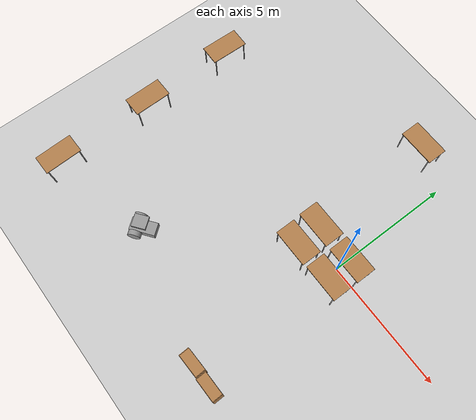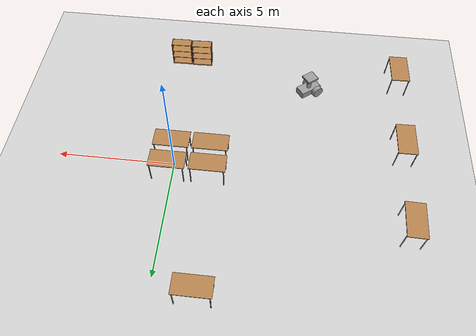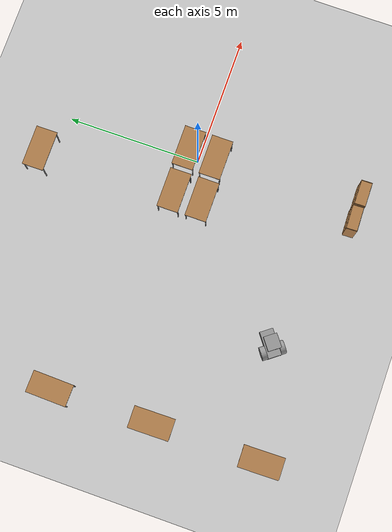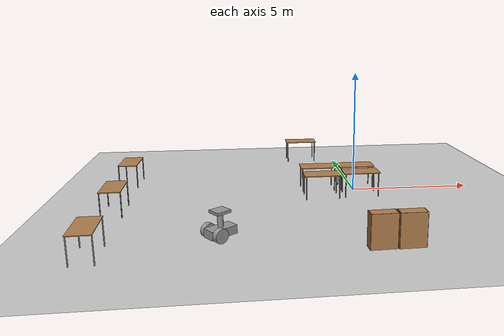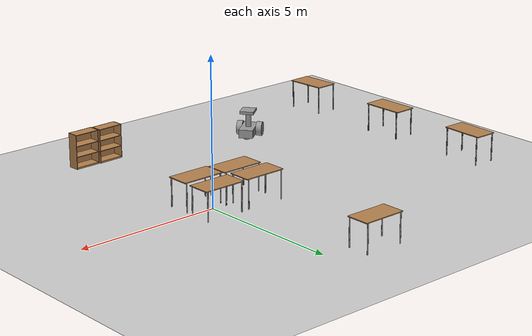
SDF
<sdf version="1.6">
 <world name="default">
  <model name="ground_plane">
   <static>1</static>
   <link name="link">
    <collision name="collision">
     <geometry><plane><normal>0 0 1</normal><size>100 100</size></plane></geometry>
     <surface><friction><ode><mu>100</mu><mu2>50</mu2></ode></friction></surface>
    </collision>
    <visual name="visual">
     <cast_shadows>0</cast_shadows>
     <geometry><plane><normal>0 0 1</normal><size>100 100</size></plane></geometry>
     <material>
      <script><uri>file://media/materials/scripts/gazebo.material</uri><name>Gazebo/Grey</name></script>
     </material>
    </visual>
   </link>
  </model>
  <model name="cody">
   <link name="link_0">
    <inertial>
     <mass>0.139888</mass>
     <inertia>
      <ixx>0.00424815</ixx>
      <ixy>0</ixy>
      <ixz>0</ixz>
      <iyy>0.01242</iyy>
      <iyz>0</iyz>
      <izz>0.0151428</izz>
     </inertia>
    </inertial>
    <pose>2.26803 -0.161715 0.175 0 -0 0</pose>
    <visual name="visual">
     <geometry><box><size>1 0.5 0.3</size></box></geometry>
     <material>
      <lighting>1</lighting>
      <script><uri>file://media/materials/scripts/gazebo.material</uri><name>Gazebo/Grey</name></script>
      <shader type="pixel"><normal_map>__default__</normal_map></shader>
      <ambient>0.3 0.3 0.3 1</ambient>
      <diffuse>0.7 0.7 0.7 1</diffuse>
      <specular>0.01 0.01 0.01 1</specular>
      <emissive>0 0 0 1</emissive>
     </material>
    </visual>
    <collision name="collision">
     <geometry><box><size>1 0.5 0.3</size></box></geometry>
     <surface>
      <friction>
       <ode><mu>1</mu><mu2>1</mu2><fdir1>0 0 0</fdir1><slip1>0</slip1><slip2>0</slip2></ode>
       <torsional>
        <coefficient>1</coefficient>
        <patch_radius>0</patch_radius>
        <surface_radius>0</surface_radius>
        <use_patch_radius>1</use_patch_radius>
        <ode><slip>0</slip></ode>
       </torsional>
      </friction>
      <bounce><restitution_coefficient>0</restitution_coefficient><threshold>1e+06</threshold></bounce>
      <contact>
       <collide_without_contact>0</collide_without_contact>
       <collide_without_contact_bitmask>1</collide_without_contact_bitmask>
       <collide_bitmask>1</collide_bitmask>
       <ode>
        <soft_cfm>0</soft_cfm>
        <soft_erp>0.2</soft_erp>
        <kp>1e+13</kp>
        <kd>1</kd>
        <max_vel>0.01</max_vel>
        <min_depth>0</min_depth>
       </ode>
       <bullet>
        <split_impulse>1</split_impulse>
        <split_impulse_penetration_threshold>-0.01</split_impulse_penetration_threshold>
        <soft_cfm>0</soft_cfm>
        <soft_erp>0.2</soft_erp>
        <kp>1e+13</kp>
        <kd>1</kd>
       </bullet>
      </contact>
     </surface>
    </collision>
   </link>
   <link name="link_1">
    <inertial>
     <mass>1</mass>
     <inertia><ixx>0.1</ixx><ixy>0</ixy><ixz>0</ixz><iyy>0.1</iyy><iyz>0</iyz><izz>0.1</izz></inertia>
    </inertial>
    <pose>1.96803 -0.161715 0.125 0 -0 0</pose>
    <visual name="visual">
     <geometry><sphere><radius>0.2</radius></sphere></geometry>
     <material>
      <lighting>1</lighting>
      <script><uri>file://media/materials/scripts/gazebo.material</uri><name>Gazebo/Grey</name></script>
      <shader type="pixel"><normal_map>__default__</normal_map></shader>
      <ambient>0.3 0.3 0.3 1</ambient>
      <diffuse>0.7 0.7 0.7 1</diffuse>
      <specular>0.01 0.01 0.01 1</specular>
      <emissive>0 0 0 1</emissive>
     </material>
    </visual>
    <collision name="collision">
     <geometry><sphere><radius>0.2</radius></sphere></geometry>
     <surface>
      <friction>
       <ode><mu>1</mu><mu2>1</mu2><fdir1>0 0 0</fdir1><slip1>0</slip1><slip2>0</slip2></ode>
       <torsional>
        <coefficient>1</coefficient>
        <patch_radius>0</patch_radius>
        <surface_radius>0</surface_radius>
        <use_patch_radius>1</use_patch_radius>
        <ode><slip>0</slip></ode>
       </torsional>
      </friction>
      <bounce><restitution_coefficient>0</restitution_coefficient><threshold>1e+06</threshold></bounce>
      <contact>
       <collide_without_contact>0</collide_without_contact>
       <collide_without_contact_bitmask>1</collide_without_contact_bitmask>
       <collide_bitmask>1</collide_bitmask>
       <ode>
        <soft_cfm>0</soft_cfm>
        <soft_erp>0.2</soft_erp>
        <kp>1e+13</kp>
        <kd>1</kd>
        <max_vel>0.01</max_vel>
        <min_depth>0</min_depth>
       </ode>
       <bullet>
        <split_impulse>1</split_impulse>
        <split_impulse_penetration_threshold>-0.01</split_impulse_penetration_threshold>
        <soft_cfm>0</soft_cfm>
        <soft_erp>0.2</soft_erp>
        <kp>1e+13</kp>
        <kd>1</kd>
       </bullet>
      </contact>
     </surface>
    </collision>
   </link>
   <link name="link_2_clone">
    <inertial>
     <mass>1</mass>
     <inertia><ixx>0.145833</ixx><ixy>0</ixy><ixz>0</ixz><iyy>0.145833</iyy><iyz>0</iyz><izz>0.125</izz></inertia>
    </inertial>
    <pose>2.51803 -0.511739 0.175 1.5707 -0 0</pose>
    <visual name="visual">
     <geometry><cylinder><radius>0.25</radius><length>0.2</length></cylinder></geometry>
     <material>
      <lighting>1</lighting>
      <script><uri>file://media/materials/scripts/gazebo.material</uri><name>Gazebo/Grey</name></script>
      <shader type="pixel"><normal_map>__default__</normal_map></shader>
      <ambient>0.3 0.3 0.3 1</ambient>
      <diffuse>0.7 0.7 0.7 1</diffuse>
      <specular>0.01 0.01 0.01 1</specular>
      <emissive>0 0 0 1</emissive>
     </material>
    </visual>
    <collision name="collision">
     <geometry><cylinder><radius>0.25</radius><length>0.2</length></cylinder></geometry>
     <surface>
      <friction>
       <ode><mu>1</mu><mu2>1</mu2><fdir1>0 0 0</fdir1><slip1>0</slip1><slip2>0</slip2></ode>
       <torsional>
        <coefficient>1</coefficient>
        <patch_radius>0</patch_radius>
        <surface_radius>0</surface_radius>
        <use_patch_radius>1</use_patch_radius>
        <ode><slip>0</slip></ode>
       </torsional>
      </friction>
      <bounce><restitution_coefficient>0</restitution_coefficient><threshold>1e+06</threshold></bounce>
      <contact>
       <collide_without_contact>0</collide_without_contact>
       <collide_without_contact_bitmask>1</collide_without_contact_bitmask>
       <collide_bitmask>1</collide_bitmask>
       <ode>
        <soft_cfm>0</soft_cfm>
        <soft_erp>0.2</soft_erp>
        <kp>1e+13</kp>
        <kd>1</kd>
        <max_vel>0.01</max_vel>
        <min_depth>0</min_depth>
       </ode>
       <bullet>
        <split_impulse>1</split_impulse>
        <split_impulse_penetration_threshold>-0.01</split_impulse_penetration_threshold>
        <soft_cfm>0</soft_cfm>
        <soft_erp>0.2</soft_erp>
        <kp>1e+13</kp>
        <kd>1</kd>
       </bullet>
      </contact>
     </surface>
    </collision>
   </link>
   <link name="link_3_clone">
    <inertial>
     <mass>1</mass>
     <inertia><ixx>0.145833</ixx><ixy>0</ixy><ixz>0</ixz><iyy>0.145833</iyy><iyz>0</iyz><izz>0.125</izz></inertia>
    </inertial>
    <pose>2.51803 0.188309 0.175 1.5707 -0 0</pose>
    <visual name="visual">
     <geometry><cylinder><radius>0.25</radius><length>0.2</length></cylinder></geometry>
     <material>
      <lighting>1</lighting>
      <script><uri>file://media/materials/scripts/gazebo.material</uri><name>Gazebo/Grey</name></script>
      <shader type="pixel"><normal_map>__default__</normal_map></shader>
      <ambient>0.3 0.3 0.3 1</ambient>
      <diffuse>0.7 0.7 0.7 1</diffuse>
      <specular>0.01 0.01 0.01 1</specular>
      <emissive>0 0 0 1</emissive>
     </material>
    </visual>
    <collision name="collision">
     <geometry><cylinder><radius>0.25</radius><length>0.2</length></cylinder></geometry>
     <surface>
      <friction>
       <ode><mu>1</mu><mu2>1</mu2><fdir1>0 0 0</fdir1><slip1>0</slip1><slip2>0</slip2></ode>
       <torsional>
        <coefficient>1</coefficient>
        <patch_radius>0</patch_radius>
        <surface_radius>0</surface_radius>
        <use_patch_radius>1</use_patch_radius>
        <ode><slip>0</slip></ode>
       </torsional>
      </friction>
      <bounce><restitution_coefficient>0</restitution_coefficient><threshold>1e+06</threshold></bounce>
      <contact>
       <collide_without_contact>0</collide_without_contact>
       <collide_without_contact_bitmask>1</collide_without_contact_bitmask>
       <collide_bitmask>1</collide_bitmask>
       <ode>
        <soft_cfm>0</soft_cfm>
        <soft_erp>0.2</soft_erp>
        <kp>1e+13</kp>
        <kd>1</kd>
        <max_vel>0.01</max_vel>
        <min_depth>0</min_depth>
       </ode>
       <bullet>
        <split_impulse>1</split_impulse>
        <split_impulse_penetration_threshold>-0.01</split_impulse_penetration_threshold>
        <soft_cfm>0</soft_cfm>
        <soft_erp>0.2</soft_erp>
        <kp>1e+13</kp>
        <kd>1</kd>
       </bullet>
      </contact>
     </surface>
    </collision>
   </link>
   <link name="link_4">
    <inertial>
     <mass>1</mass>
     <inertia><ixx>0.145833</ixx><ixy>0</ixy><ixz>0</ixz><iyy>0.145833</iyy><iyz>0</iyz><izz>0.125</izz></inertia>
    </inertial>
    <pose>2.26803 -0.161715 0.575 0 -0 0</pose>
    <visual name="visual">
     <geometry><cylinder><radius>0.1</radius><length>0.5</length></cylinder></geometry>
     <material>
      <lighting>1</lighting>
      <script><uri>file://media/materials/scripts/gazebo.material</uri><name>Gazebo/Grey</name></script>
      <shader type="pixel"><normal_map>__default__</normal_map></shader>
      <ambient>0.3 0.3 0.3 1</ambient>
      <diffuse>0.7 0.7 0.7 1</diffuse>
      <specular>0.01 0.01 0.01 1</specular>
      <emissive>0 0 0 1</emissive>
     </material>
    </visual>
    <collision name="collision">
     <geometry><cylinder><radius>0.1</radius><length>0.5</length></cylinder></geometry>
     <surface>
      <friction>
       <ode><mu>1</mu><mu2>1</mu2><fdir1>0 0 0</fdir1><slip1>0</slip1><slip2>0</slip2></ode>
       <torsional>
        <coefficient>1</coefficient>
        <patch_radius>0</patch_radius>
        <surface_radius>0</surface_radius>
        <use_patch_radius>1</use_patch_radius>
        <ode><slip>0</slip></ode>
       </torsional>
      </friction>
      <bounce><restitution_coefficient>0</restitution_coefficient><threshold>1e+06</threshold></bounce>
      <contact>
       <collide_without_contact>0</collide_without_contact>
       <collide_without_contact_bitmask>1</collide_without_contact_bitmask>
       <collide_bitmask>1</collide_bitmask>
       <ode>
        <soft_cfm>0</soft_cfm>
        <soft_erp>0.2</soft_erp>
        <kp>1e+13</kp>
        <kd>1</kd>
        <max_vel>0.01</max_vel>
        <min_depth>0</min_depth>
       </ode>
       <bullet>
        <split_impulse>1</split_impulse>
        <split_impulse_penetration_threshold>-0.01</split_impulse_penetration_threshold>
        <soft_cfm>0</soft_cfm>
        <soft_erp>0.2</soft_erp>
        <kp>1e+13</kp>
        <kd>1</kd>
       </bullet>
      </contact>
     </surface>
    </collision>
   </link>
   <link name="link_5_clone">
    <inertial>
     <mass>0.0226706</mass>
     <inertia>
      <ixx>0.00054023</ixx>
      <ixy>0</ixy>
      <ixz>0</ixz>
      <iyy>0.0004373</iyy>
      <iyz>0</iyz>
      <izz>0.00094619</izz>
     </inertia>
    </inertial>
    <pose>2.28803 -0.141715 0.875 0 -0 0</pose>
    <visual name="visual">
     <geometry><box><size>0.5414 0.5 0.1</size></box></geometry>
     <material>
      <lighting>1</lighting>
      <script><uri>file://media/materials/scripts/gazebo.material</uri><name>Gazebo/Grey</name></script>
      <shader type="pixel"><normal_map>__default__</normal_map></shader>
      <ambient>0.3 0.3 0.3 1</ambient>
      <diffuse>0.7 0.7 0.7 1</diffuse>
      <specular>0.01 0.01 0.01 1</specular>
      <emissive>0 0 0 1</emissive>
     </material>
    </visual>
    <collision name="collision">
     <geometry><box><size>0.472414 0.526936 0.091081</size></box></geometry>
     <surface>
      <friction>
       <ode><mu>1</mu><mu2>1</mu2><fdir1>0 0 0</fdir1><slip1>0</slip1><slip2>0</slip2></ode>
       <torsional>
        <coefficient>1</coefficient>
        <patch_radius>0</patch_radius>
        <surface_radius>0</surface_radius>
        <use_patch_radius>1</use_patch_radius>
        <ode><slip>0</slip></ode>
       </torsional>
      </friction>
      <bounce><restitution_coefficient>0</restitution_coefficient><threshold>1e+06</threshold></bounce>
      <contact>
       <collide_without_contact>0</collide_without_contact>
       <collide_without_contact_bitmask>1</collide_without_contact_bitmask>
       <collide_bitmask>1</collide_bitmask>
       <ode>
        <soft_cfm>0</soft_cfm>
        <soft_erp>0.2</soft_erp>
        <kp>1e+13</kp>
        <kd>1</kd>
        <max_vel>0.01</max_vel>
        <min_depth>0</min_depth>
       </ode>
       <bullet>
        <split_impulse>1</split_impulse>
        <split_impulse_penetration_threshold>-0.01</split_impulse_penetration_threshold>
        <soft_cfm>0</soft_cfm>
        <soft_erp>0.2</soft_erp>
        <kp>1e+13</kp>
        <kd>1</kd>
       </bullet>
      </contact>
     </surface>
    </collision>
   </link>
   <joint name="link_0_JOINT_0" type="ball">
    <parent>link_0</parent>
    <child>link_1</child>
    <physics>
     <ode><limit><cfm>0</cfm><erp>0.2</erp></limit><suspension><cfm>0</cfm><erp>0.2</erp></suspension></ode>
    </physics>
   </joint>
   <joint name="link_0_JOINT_2" type="revolute">
    <parent>link_0</parent>
    <child>link_2_clone</child>
    <axis>
     <xyz>0 0 1</xyz>
     <use_parent_model_frame>0</use_parent_model_frame>
     <limit>
      <lower>-1.79769e+308</lower>
      <upper>1.79769e+308</upper>
      <effort>-1</effort>
      <velocity>-1</velocity>
     </limit>
     <dynamics>
      <spring_reference>0</spring_reference>
      <spring_stiffness>0</spring_stiffness>
      <damping>0</damping>
     </dynamics>
    </axis>
    <physics>
     <ode><limit><cfm>0</cfm><erp>0.2</erp></limit><suspension><cfm>0</cfm><erp>0.2</erp></suspension></ode>
    </physics>
   </joint>
   <joint name="link_0_JOINT_4" type="revolute">
    <parent>link_0</parent>
    <child>link_3_clone</child>
    <axis>
     <xyz>0 0 1</xyz>
     <use_parent_model_frame>0</use_parent_model_frame>
     <limit>
      <lower>-1.79769e+308</lower>
      <upper>1.79769e+308</upper>
      <effort>-1</effort>
      <velocity>-1</velocity>
     </limit>
     <dynamics>
      <spring_reference>0</spring_reference>
      <spring_stiffness>0</spring_stiffness>
      <damping>0</damping>
     </dynamics>
    </axis>
    <physics>
     <ode><limit><cfm>0</cfm><erp>0.2</erp></limit><suspension><cfm>0</cfm><erp>0.2</erp></suspension></ode>
    </physics>
   </joint>
   <joint name="link_0_JOINT_5" type="revolute">
    <parent>link_0</parent>
    <child>link_4</child>
    <axis>
     <xyz>0 0 1</xyz>
     <use_parent_model_frame>0</use_parent_model_frame>
     <limit>
      <lower>-1.79769e+308</lower>
      <upper>1.79769e+308</upper>
      <effort>-1</effort>
      <velocity>-1</velocity>
     </limit>
     <dynamics>
      <spring_reference>0</spring_reference>
      <spring_stiffness>0</spring_stiffness>
      <damping>0</damping>
     </dynamics>
    </axis>
    <physics>
     <ode><limit><cfm>0</cfm><erp>0.2</erp></limit><suspension><cfm>0</cfm><erp>0.2</erp></suspension></ode>
    </physics>
   </joint>
   <joint name="link_4_JOINT_6" type="fixed">
    <parent>link_4</parent>
    <child>link_5_clone</child>
    <physics>
     <ode><limit><cfm>0</cfm><erp>0.2</erp></limit><suspension><cfm>0</cfm><erp>0.2</erp></suspension></ode>
    </physics>
   </joint>
   <static>0</static>
   <pose>-3.60387 -3.44077 0.075 2.4e-05 -2e-06 -2.49187</pose>
  </model>
  <model name="table">
   <static>1</static>
   <link name="link">
    <collision name="surface">
     <pose>0 0 1 0 -0 0</pose>
     <geometry><box><size>1.5 0.8 0.03</size></box></geometry>
     <surface><friction><ode><mu>0.6</mu><mu2>0.6</mu2></ode></friction></surface>
    </collision>
    <visual name="visual1">
     <pose>0 0 1 0 -0 0</pose>
     <geometry><box><size>1.5 0.8 0.03</size></box></geometry>
     <material>
      <script><uri>file://media/materials/scripts/gazebo.material</uri><name>Gazebo/Wood</name></script>
     </material>
    </visual>
    <collision name="front_left_leg">
     <pose>0.68 0.38 0.5 0 -0 0</pose>
     <geometry><cylinder><radius>0.02</radius><length>1</length></cylinder></geometry>
    </collision>
    <visual name="front_left_leg">
     <pose>0.68 0.38 0.5 0 -0 0</pose>
     <geometry><cylinder><radius>0.02</radius><length>1</length></cylinder></geometry>
     <material>
      <script><uri>file://media/materials/scripts/gazebo.material</uri><name>Gazebo/Grey</name></script>
     </material>
    </visual>
    <collision name="front_right_leg">
     <pose>0.68 -0.38 0.5 0 -0 0</pose>
     <geometry><cylinder><radius>0.02</radius><length>1</length></cylinder></geometry>
    </collision>
    <visual name="front_right_leg">
     <pose>0.68 -0.38 0.5 0 -0 0</pose>
     <geometry><cylinder><radius>0.02</radius><length>1</length></cylinder></geometry>
     <material>
      <script><uri>file://media/materials/scripts/gazebo.material</uri><name>Gazebo/Grey</name></script>
     </material>
    </visual>
    <collision name="back_right_leg">
     <pose>-0.68 -0.38 0.5 0 -0 0</pose>
     <geometry><cylinder><radius>0.02</radius><length>1</length></cylinder></geometry>
    </collision>
    <visual name="back_right_leg">
     <pose>-0.68 -0.38 0.5 0 -0 0</pose>
     <geometry><cylinder><radius>0.02</radius><length>1</length></cylinder></geometry>
     <material>
      <script><uri>file://media/materials/scripts/gazebo.material</uri><name>Gazebo/Grey</name></script>
     </material>
    </visual>
    <collision name="back_left_leg">
     <pose>-0.68 0.38 0.5 0 -0 0</pose>
     <geometry><cylinder><radius>0.02</radius><length>1</length></cylinder></geometry>
    </collision>
    <visual name="back_left_leg">
     <pose>-0.68 0.38 0.5 0 -0 0</pose>
     <geometry><cylinder><radius>0.02</radius><length>1</length></cylinder></geometry>
     <material>
      <script><uri>file://media/materials/scripts/gazebo.material</uri><name>Gazebo/Grey</name></script>
     </material>
    </visual>
   </link>
   <pose>-9.55324 -5.65022 0 -0.000395 -0.022415 1.58842</pose>
  </model>
  <model name="table_0">
   <static>1</static>
   <link name="link">
    <collision name="surface">
     <pose>0 0 1 0 -0 0</pose>
     <geometry><box><size>1.5 0.8 0.03</size></box></geometry>
     <surface><friction><ode><mu>0.6</mu><mu2>0.6</mu2></ode></friction></surface>
    </collision>
    <visual name="visual1">
     <pose>0 0 1 0 -0 0</pose>
     <geometry><box><size>1.5 0.8 0.03</size></box></geometry>
     <material>
      <script><uri>file://media/materials/scripts/gazebo.material</uri><name>Gazebo/Wood</name></script>
     </material>
    </visual>
    <collision name="front_left_leg">
     <pose>0.68 0.38 0.5 0 -0 0</pose>
     <geometry><cylinder><radius>0.02</radius><length>1</length></cylinder></geometry>
    </collision>
    <visual name="front_left_leg">
     <pose>0.68 0.38 0.5 0 -0 0</pose>
     <geometry><cylinder><radius>0.02</radius><length>1</length></cylinder></geometry>
     <material>
      <script><uri>file://media/materials/scripts/gazebo.material</uri><name>Gazebo/Grey</name></script>
     </material>
    </visual>
    <collision name="front_right_leg">
     <pose>0.68 -0.38 0.5 0 -0 0</pose>
     <geometry><cylinder><radius>0.02</radius><length>1</length></cylinder></geometry>
    </collision>
    <visual name="front_right_leg">
     <pose>0.68 -0.38 0.5 0 -0 0</pose>
     <geometry><cylinder><radius>0.02</radius><length>1</length></cylinder></geometry>
     <material>
      <script><uri>file://media/materials/scripts/gazebo.material</uri><name>Gazebo/Grey</name></script>
     </material>
    </visual>
    <collision name="back_right_leg">
     <pose>-0.68 -0.38 0.5 0 -0 0</pose>
     <geometry><cylinder><radius>0.02</radius><length>1</length></cylinder></geometry>
    </collision>
    <visual name="back_right_leg">
     <pose>-0.68 -0.38 0.5 0 -0 0</pose>
     <geometry><cylinder><radius>0.02</radius><length>1</length></cylinder></geometry>
     <material>
      <script><uri>file://media/materials/scripts/gazebo.material</uri><name>Gazebo/Grey</name></script>
     </material>
    </visual>
    <collision name="back_left_leg">
     <pose>-0.68 0.38 0.5 0 -0 0</pose>
     <geometry><cylinder><radius>0.02</radius><length>1</length></cylinder></geometry>
    </collision>
    <visual name="back_left_leg">
     <pose>-0.68 0.38 0.5 0 -0 0</pose>
     <geometry><cylinder><radius>0.02</radius><length>1</length></cylinder></geometry>
     <material>
      <script><uri>file://media/materials/scripts/gazebo.material</uri><name>Gazebo/Grey</name></script>
     </material>
    </visual>
   </link>
   <pose>-9.56131 -1.66256 0 0 -0 1.58323</pose>
  </model>
  <model name="table_1">
   <static>1</static>
   <link name="link">
    <collision name="surface">
     <pose>0 0 1 0 -0 0</pose>
     <geometry><box><size>1.5 0.8 0.03</size></box></geometry>
     <surface><friction><ode><mu>0.6</mu><mu2>0.6</mu2></ode></friction></surface>
    </collision>
    <visual name="visual1">
     <pose>0 0 1 0 -0 0</pose>
     <geometry><box><size>1.5 0.8 0.03</size></box></geometry>
     <material>
      <script><uri>file://media/materials/scripts/gazebo.material</uri><name>Gazebo/Wood</name></script>
     </material>
    </visual>
    <collision name="front_left_leg">
     <pose>0.68 0.38 0.5 0 -0 0</pose>
     <geometry><cylinder><radius>0.02</radius><length>1</length></cylinder></geometry>
    </collision>
    <visual name="front_left_leg">
     <pose>0.68 0.38 0.5 0 -0 0</pose>
     <geometry><cylinder><radius>0.02</radius><length>1</length></cylinder></geometry>
     <material>
      <script><uri>file://media/materials/scripts/gazebo.material</uri><name>Gazebo/Grey</name></script>
     </material>
    </visual>
    <collision name="front_right_leg">
     <pose>0.68 -0.38 0.5 0 -0 0</pose>
     <geometry><cylinder><radius>0.02</radius><length>1</length></cylinder></geometry>
    </collision>
    <visual name="front_right_leg">
     <pose>0.68 -0.38 0.5 0 -0 0</pose>
     <geometry><cylinder><radius>0.02</radius><length>1</length></cylinder></geometry>
     <material>
      <script><uri>file://media/materials/scripts/gazebo.material</uri><name>Gazebo/Grey</name></script>
     </material>
    </visual>
    <collision name="back_right_leg">
     <pose>-0.68 -0.38 0.5 0 -0 0</pose>
     <geometry><cylinder><radius>0.02</radius><length>1</length></cylinder></geometry>
    </collision>
    <visual name="back_right_leg">
     <pose>-0.68 -0.38 0.5 0 -0 0</pose>
     <geometry><cylinder><radius>0.02</radius><length>1</length></cylinder></geometry>
     <material>
      <script><uri>file://media/materials/scripts/gazebo.material</uri><name>Gazebo/Grey</name></script>
     </material>
    </visual>
    <collision name="back_left_leg">
     <pose>-0.68 0.38 0.5 0 -0 0</pose>
     <geometry><cylinder><radius>0.02</radius><length>1</length></cylinder></geometry>
    </collision>
    <visual name="back_left_leg">
     <pose>-0.68 0.38 0.5 0 -0 0</pose>
     <geometry><cylinder><radius>0.02</radius><length>1</length></cylinder></geometry>
     <material>
      <script><uri>file://media/materials/scripts/gazebo.material</uri><name>Gazebo/Grey</name></script>
     </material>
    </visual>
   </link>
   <pose>-9.61044 2.0792 0 0 0 -1.59503</pose>
  </model>
  <model name="table_2">
   <static>1</static>
   <link name="link">
    <collision name="surface">
     <pose>0 0 1 0 -0 0</pose>
     <geometry><box><size>1.5 0.8 0.03</size></box></geometry>
     <surface><friction><ode><mu>0.6</mu><mu2>0.6</mu2></ode></friction></surface>
    </collision>
    <visual name="visual1">
     <pose>0 0 1 0 -0 0</pose>
     <geometry><box><size>1.5 0.8 0.03</size></box></geometry>
     <material>
      <script><uri>file://media/materials/scripts/gazebo.material</uri><name>Gazebo/Wood</name></script>
     </material>
    </visual>
    <collision name="front_left_leg">
     <pose>0.68 0.38 0.5 0 -0 0</pose>
     <geometry><cylinder><radius>0.02</radius><length>1</length></cylinder></geometry>
    </collision>
    <visual name="front_left_leg">
     <pose>0.68 0.38 0.5 0 -0 0</pose>
     <geometry><cylinder><radius>0.02</radius><length>1</length></cylinder></geometry>
     <material>
      <script><uri>file://media/materials/scripts/gazebo.material</uri><name>Gazebo/Grey</name></script>
     </material>
    </visual>
    <collision name="front_right_leg">
     <pose>0.68 -0.38 0.5 0 -0 0</pose>
     <geometry><cylinder><radius>0.02</radius><length>1</length></cylinder></geometry>
    </collision>
    <visual name="front_right_leg">
     <pose>0.68 -0.38 0.5 0 -0 0</pose>
     <geometry><cylinder><radius>0.02</radius><length>1</length></cylinder></geometry>
     <material>
      <script><uri>file://media/materials/scripts/gazebo.material</uri><name>Gazebo/Grey</name></script>
     </material>
    </visual>
    <collision name="back_right_leg">
     <pose>-0.68 -0.38 0.5 0 -0 0</pose>
     <geometry><cylinder><radius>0.02</radius><length>1</length></cylinder></geometry>
    </collision>
    <visual name="back_right_leg">
     <pose>-0.68 -0.38 0.5 0 -0 0</pose>
     <geometry><cylinder><radius>0.02</radius><length>1</length></cylinder></geometry>
     <material>
      <script><uri>file://media/materials/scripts/gazebo.material</uri><name>Gazebo/Grey</name></script>
     </material>
    </visual>
    <collision name="back_left_leg">
     <pose>-0.68 0.38 0.5 0 -0 0</pose>
     <geometry><cylinder><radius>0.02</radius><length>1</length></cylinder></geometry>
    </collision>
    <visual name="back_left_leg">
     <pose>-0.68 0.38 0.5 0 -0 0</pose>
     <geometry><cylinder><radius>0.02</radius><length>1</length></cylinder></geometry>
     <material>
      <script><uri>file://media/materials/scripts/gazebo.material</uri><name>Gazebo/Grey</name></script>
     </material>
    </visual>
   </link>
   <pose>-1.47778 -0.681908 -0.050523 0 -0 0</pose>
  </model>
  <model name="table_3">
   <static>1</static>
   <link name="link">
    <collision name="surface">
     <pose>0 0 1 0 -0 0</pose>
     <geometry><box><size>1.5 0.8 0.03</size></box></geometry>
     <surface><friction><ode><mu>0.6</mu><mu2>0.6</mu2></ode></friction></surface>
    </collision>
    <visual name="visual1">
     <pose>0 0 1 0 -0 0</pose>
     <geometry><box><size>1.5 0.8 0.03</size></box></geometry>
     <material>
      <script><uri>file://media/materials/scripts/gazebo.material</uri><name>Gazebo/Wood</name></script>
     </material>
    </visual>
    <collision name="front_left_leg">
     <pose>0.68 0.38 0.5 0 -0 0</pose>
     <geometry><cylinder><radius>0.02</radius><length>1</length></cylinder></geometry>
    </collision>
    <visual name="front_left_leg">
     <pose>0.68 0.38 0.5 0 -0 0</pose>
     <geometry><cylinder><radius>0.02</radius><length>1</length></cylinder></geometry>
     <material>
      <script><uri>file://media/materials/scripts/gazebo.material</uri><name>Gazebo/Grey</name></script>
     </material>
    </visual>
    <collision name="front_right_leg">
     <pose>0.68 -0.38 0.5 0 -0 0</pose>
     <geometry><cylinder><radius>0.02</radius><length>1</length></cylinder></geometry>
    </collision>
    <visual name="front_right_leg">
     <pose>0.68 -0.38 0.5 0 -0 0</pose>
     <geometry><cylinder><radius>0.02</radius><length>1</length></cylinder></geometry>
     <material>
      <script><uri>file://media/materials/scripts/gazebo.material</uri><name>Gazebo/Grey</name></script>
     </material>
    </visual>
    <collision name="back_right_leg">
     <pose>-0.68 -0.38 0.5 0 -0 0</pose>
     <geometry><cylinder><radius>0.02</radius><length>1</length></cylinder></geometry>
    </collision>
    <visual name="back_right_leg">
     <pose>-0.68 -0.38 0.5 0 -0 0</pose>
     <geometry><cylinder><radius>0.02</radius><length>1</length></cylinder></geometry>
     <material>
      <script><uri>file://media/materials/scripts/gazebo.material</uri><name>Gazebo/Grey</name></script>
     </material>
    </visual>
    <collision name="back_left_leg">
     <pose>-0.68 0.38 0.5 0 -0 0</pose>
     <geometry><cylinder><radius>0.02</radius><length>1</length></cylinder></geometry>
    </collision>
    <visual name="back_left_leg">
     <pose>-0.68 0.38 0.5 0 -0 0</pose>
     <geometry><cylinder><radius>0.02</radius><length>1</length></cylinder></geometry>
     <material>
      <script><uri>file://media/materials/scripts/gazebo.material</uri><name>Gazebo/Grey</name></script>
     </material>
    </visual>
   </link>
   <pose>0.148385 -0.643592 0 0 -0 0</pose>
  </model>
  <model name="table_4">
   <static>1</static>
   <link name="link">
    <collision name="surface">
     <pose>0 0 1 0 -0 0</pose>
     <geometry><box><size>1.5 0.8 0.03</size></box></geometry>
     <surface><friction><ode><mu>0.6</mu><mu2>0.6</mu2></ode></friction></surface>
    </collision>
    <visual name="visual1">
     <pose>0 0 1 0 -0 0</pose>
     <geometry><box><size>1.5 0.8 0.03</size></box></geometry>
     <material>
      <script><uri>file://media/materials/scripts/gazebo.material</uri><name>Gazebo/Wood</name></script>
     </material>
    </visual>
    <collision name="front_left_leg">
     <pose>0.68 0.38 0.5 0 -0 0</pose>
     <geometry><cylinder><radius>0.02</radius><length>1</length></cylinder></geometry>
    </collision>
    <visual name="front_left_leg">
     <pose>0.68 0.38 0.5 0 -0 0</pose>
     <geometry><cylinder><radius>0.02</radius><length>1</length></cylinder></geometry>
     <material>
      <script><uri>file://media/materials/scripts/gazebo.material</uri><name>Gazebo/Grey</name></script>
     </material>
    </visual>
    <collision name="front_right_leg">
     <pose>0.68 -0.38 0.5 0 -0 0</pose>
     <geometry><cylinder><radius>0.02</radius><length>1</length></cylinder></geometry>
    </collision>
    <visual name="front_right_leg">
     <pose>0.68 -0.38 0.5 0 -0 0</pose>
     <geometry><cylinder><radius>0.02</radius><length>1</length></cylinder></geometry>
     <material>
      <script><uri>file://media/materials/scripts/gazebo.material</uri><name>Gazebo/Grey</name></script>
     </material>
    </visual>
    <collision name="back_right_leg">
     <pose>-0.68 -0.38 0.5 0 -0 0</pose>
     <geometry><cylinder><radius>0.02</radius><length>1</length></cylinder></geometry>
    </collision>
    <visual name="back_right_leg">
     <pose>-0.68 -0.38 0.5 0 -0 0</pose>
     <geometry><cylinder><radius>0.02</radius><length>1</length></cylinder></geometry>
     <material>
      <script><uri>file://media/materials/scripts/gazebo.material</uri><name>Gazebo/Grey</name></script>
     </material>
    </visual>
    <collision name="back_left_leg">
     <pose>-0.68 0.38 0.5 0 -0 0</pose>
     <geometry><cylinder><radius>0.02</radius><length>1</length></cylinder></geometry>
    </collision>
    <visual name="back_left_leg">
     <pose>-0.68 0.38 0.5 0 -0 0</pose>
     <geometry><cylinder><radius>0.02</radius><length>1</length></cylinder></geometry>
     <material>
      <script><uri>file://media/materials/scripts/gazebo.material</uri><name>Gazebo/Grey</name></script>
     </material>
    </visual>
   </link>
   <pose>-1.50036 0.379652 0 0 -0 0</pose>
  </model>
  <model name="table_5">
   <static>1</static>
   <link name="link">
    <collision name="surface">
     <pose>0 0 1 0 -0 0</pose>
     <geometry><box><size>1.5 0.8 0.03</size></box></geometry>
     <surface><friction><ode><mu>0.6</mu><mu2>0.6</mu2></ode></friction></surface>
    </collision>
    <visual name="visual1">
     <pose>0 0 1 0 -0 0</pose>
     <geometry><box><size>1.5 0.8 0.03</size></box></geometry>
     <material>
      <script><uri>file://media/materials/scripts/gazebo.material</uri><name>Gazebo/Wood</name></script>
     </material>
    </visual>
    <collision name="front_left_leg">
     <pose>0.68 0.38 0.5 0 -0 0</pose>
     <geometry><cylinder><radius>0.02</radius><length>1</length></cylinder></geometry>
    </collision>
    <visual name="front_left_leg">
     <pose>0.68 0.38 0.5 0 -0 0</pose>
     <geometry><cylinder><radius>0.02</radius><length>1</length></cylinder></geometry>
     <material>
      <script><uri>file://media/materials/scripts/gazebo.material</uri><name>Gazebo/Grey</name></script>
     </material>
    </visual>
    <collision name="front_right_leg">
     <pose>0.68 -0.38 0.5 0 -0 0</pose>
     <geometry><cylinder><radius>0.02</radius><length>1</length></cylinder></geometry>
    </collision>
    <visual name="front_right_leg">
     <pose>0.68 -0.38 0.5 0 -0 0</pose>
     <geometry><cylinder><radius>0.02</radius><length>1</length></cylinder></geometry>
     <material>
      <script><uri>file://media/materials/scripts/gazebo.material</uri><name>Gazebo/Grey</name></script>
     </material>
    </visual>
    <collision name="back_right_leg">
     <pose>-0.68 -0.38 0.5 0 -0 0</pose>
     <geometry><cylinder><radius>0.02</radius><length>1</length></cylinder></geometry>
    </collision>
    <visual name="back_right_leg">
     <pose>-0.68 -0.38 0.5 0 -0 0</pose>
     <geometry><cylinder><radius>0.02</radius><length>1</length></cylinder></geometry>
     <material>
      <script><uri>file://media/materials/scripts/gazebo.material</uri><name>Gazebo/Grey</name></script>
     </material>
    </visual>
    <collision name="back_left_leg">
     <pose>-0.68 0.38 0.5 0 -0 0</pose>
     <geometry><cylinder><radius>0.02</radius><length>1</length></cylinder></geometry>
    </collision>
    <visual name="back_left_leg">
     <pose>-0.68 0.38 0.5 0 -0 0</pose>
     <geometry><cylinder><radius>0.02</radius><length>1</length></cylinder></geometry>
     <material>
      <script><uri>file://media/materials/scripts/gazebo.material</uri><name>Gazebo/Grey</name></script>
     </material>
    </visual>
   </link>
   <pose>0.159948 0.401189 0 0 -0 0</pose>
  </model>
  <model name="table_11">
   <static>1</static>
   <link name="link">
    <collision name="surface">
     <pose>0 0 1 0 -0 0</pose>
     <geometry><box><size>1.5 0.8 0.03</size></box></geometry>
     <surface><friction><ode><mu>0.6</mu><mu2>0.6</mu2></ode></friction></surface>
    </collision>
    <visual name="visual1">
     <pose>0 0 1 0 -0 0</pose>
     <geometry><box><size>1.5 0.8 0.03</size></box></geometry>
     <material>
      <script><uri>file://media/materials/scripts/gazebo.material</uri><name>Gazebo/Wood</name></script>
     </material>
    </visual>
    <collision name="front_left_leg">
     <pose>0.68 0.38 0.5 0 -0 0</pose>
     <geometry><cylinder><radius>0.02</radius><length>1</length></cylinder></geometry>
    </collision>
    <visual name="front_left_leg">
     <pose>0.68 0.38 0.5 0 -0 0</pose>
     <geometry><cylinder><radius>0.02</radius><length>1</length></cylinder></geometry>
     <material>
      <script><uri>file://media/materials/scripts/gazebo.material</uri><name>Gazebo/Grey</name></script>
     </material>
    </visual>
    <collision name="front_right_leg">
     <pose>0.68 -0.38 0.5 0 -0 0</pose>
     <geometry><cylinder><radius>0.02</radius><length>1</length></cylinder></geometry>
    </collision>
    <visual name="front_right_leg">
     <pose>0.68 -0.38 0.5 0 -0 0</pose>
     <geometry><cylinder><radius>0.02</radius><length>1</length></cylinder></geometry>
     <material>
      <script><uri>file://media/materials/scripts/gazebo.material</uri><name>Gazebo/Grey</name></script>
     </material>
    </visual>
    <collision name="back_right_leg">
     <pose>-0.68 -0.38 0.5 0 -0 0</pose>
     <geometry><cylinder><radius>0.02</radius><length>1</length></cylinder></geometry>
    </collision>
    <visual name="back_right_leg">
     <pose>-0.68 -0.38 0.5 0 -0 0</pose>
     <geometry><cylinder><radius>0.02</radius><length>1</length></cylinder></geometry>
     <material>
      <script><uri>file://media/materials/scripts/gazebo.material</uri><name>Gazebo/Grey</name></script>
     </material>
    </visual>
    <collision name="back_left_leg">
     <pose>-0.68 0.38 0.5 0 -0 0</pose>
     <geometry><cylinder><radius>0.02</radius><length>1</length></cylinder></geometry>
    </collision>
    <visual name="back_left_leg">
     <pose>-0.68 0.38 0.5 0 -0 0</pose>
     <geometry><cylinder><radius>0.02</radius><length>1</length></cylinder></geometry>
     <material>
      <script><uri>file://media/materials/scripts/gazebo.material</uri><name>Gazebo/Grey</name></script>
     </material>
    </visual>
   </link>
   <pose>-1.64706 5.49606 0 0 -0 0</pose>
  </model>
  <model name="bookshelf">
   <static>1</static>
   <link name="link">
    <inertial><mass>1</mass></inertial>
    <collision name="back">
     <pose>0 0.005 0.6 0 -0 0</pose>
     <geometry><box><size>0.9 0.01 1.2</size></box></geometry>
    </collision>
    <visual name="visual1">
     <pose>0 0.005 0.6 0 -0 0</pose>
     <geometry><box><size>0.9 0.01 1.2</size></box></geometry>
     <material>
      <script><uri>file://media/materials/scripts/gazebo.material</uri><name>Gazebo/Wood</name></script>
     </material>
    </visual>
    <collision name="left_side">
     <pose>0.45 -0.195 0.6 0 -0 0</pose>
     <geometry><box><size>0.02 0.4 1.2</size></box></geometry>
    </collision>
    <visual name="visual2">
     <pose>0.45 -0.195 0.6 0 -0 0</pose>
     <geometry><box><size>0.02 0.4 1.2</size></box></geometry>
     <material>
      <script><uri>file://media/materials/scripts/gazebo.material</uri><name>Gazebo/Wood</name></script>
     </material>
    </visual>
    <collision name="right_side">
     <pose>-0.45 -0.195 0.6 0 -0 0</pose>
     <geometry><box><size>0.02 0.4 1.2</size></box></geometry>
    </collision>
    <visual name="visual3">
     <pose>-0.45 -0.195 0.6 0 -0 0</pose>
     <geometry><box><size>0.02 0.4 1.2</size></box></geometry>
     <material>
      <script><uri>file://media/materials/scripts/gazebo.material</uri><name>Gazebo/Wood</name></script>
     </material>
    </visual>
    <collision name="bottom">
     <pose>0 -0.195 0.03 0 -0 0</pose>
     <geometry><box><size>0.88 0.4 0.06</size></box></geometry>
    </collision>
    <visual name="visual4">
     <pose>0 -0.195 0.03 0 -0 0</pose>
     <geometry><box><size>0.88 0.4 0.06</size></box></geometry>
     <material>
      <script><uri>file://media/materials/scripts/gazebo.material</uri><name>Gazebo/Wood</name></script>
     </material>
    </visual>
    <collision name="top">
     <pose>0 -0.195 1.19 0 -0 0</pose>
     <geometry><box><size>0.88 0.4 0.02</size></box></geometry>
    </collision>
    <visual name="visual5">
     <pose>0 -0.195 1.19 0 -0 0</pose>
     <geometry><box><size>0.88 0.4 0.02</size></box></geometry>
     <material>
      <script><uri>file://media/materials/scripts/gazebo.material</uri><name>Gazebo/Wood</name></script>
     </material>
    </visual>
    <collision name="low_shelf">
     <pose>0 -0.195 0.43 0 -0 0</pose>
     <geometry><box><size>0.88 0.4 0.02</size></box></geometry>
    </collision>
    <visual name="visual6">
     <pose>0 -0.195 0.43 0 -0 0</pose>
     <geometry><box><size>0.88 0.4 0.02</size></box></geometry>
     <material>
      <script><uri>file://media/materials/scripts/gazebo.material</uri><name>Gazebo/Wood</name></script>
     </material>
    </visual>
    <collision name="high_shelf">
     <pose>0 -0.195 0.8 0 -0 0</pose>
     <geometry><box><size>0.88 0.4 0.02</size></box></geometry>
    </collision>
    <visual name="visual7">
     <pose>0 -0.195 0.8 0 -0 0</pose>
     <geometry><box><size>0.88 0.4 0.02</size></box></geometry>
     <material>
      <script><uri>file://media/materials/scripts/gazebo.material</uri><name>Gazebo/Wood</name></script>
     </material>
    </visual>
   </link>
   <pose>-0.353718 -6.266 0 -3.2e-05 -0.000968 -3.10903</pose>
  </model>
  <model name="bookshelf_0">
   <static>1</static>
   <link name="link">
    <inertial><mass>1</mass></inertial>
    <collision name="back">
     <pose>0 0.005 0.6 0 -0 0</pose>
     <geometry><box><size>0.9 0.01 1.2</size></box></geometry>
    </collision>
    <visual name="visual1">
     <pose>0 0.005 0.6 0 -0 0</pose>
     <geometry><box><size>0.9 0.01 1.2</size></box></geometry>
     <material>
      <script><uri>file://media/materials/scripts/gazebo.material</uri><name>Gazebo/Wood</name></script>
     </material>
    </visual>
    <collision name="left_side">
     <pose>0.45 -0.195 0.6 0 -0 0</pose>
     <geometry><box><size>0.02 0.4 1.2</size></box></geometry>
    </collision>
    <visual name="visual2">
     <pose>0.45 -0.195 0.6 0 -0 0</pose>
     <geometry><box><size>0.02 0.4 1.2</size></box></geometry>
     <material>
      <script><uri>file://media/materials/scripts/gazebo.material</uri><name>Gazebo/Wood</name></script>
     </material>
    </visual>
    <collision name="right_side">
     <pose>-0.45 -0.195 0.6 0 -0 0</pose>
     <geometry><box><size>0.02 0.4 1.2</size></box></geometry>
    </collision>
    <visual name="visual3">
     <pose>-0.45 -0.195 0.6 0 -0 0</pose>
     <geometry><box><size>0.02 0.4 1.2</size></box></geometry>
     <material>
      <script><uri>file://media/materials/scripts/gazebo.material</uri><name>Gazebo/Wood</name></script>
     </material>
    </visual>
    <collision name="bottom">
     <pose>0 -0.195 0.03 0 -0 0</pose>
     <geometry><box><size>0.88 0.4 0.06</size></box></geometry>
    </collision>
    <visual name="visual4">
     <pose>0 -0.195 0.03 0 -0 0</pose>
     <geometry><box><size>0.88 0.4 0.06</size></box></geometry>
     <material>
      <script><uri>file://media/materials/scripts/gazebo.material</uri><name>Gazebo/Wood</name></script>
     </material>
    </visual>
    <collision name="top">
     <pose>0 -0.195 1.19 0 -0 0</pose>
     <geometry><box><size>0.88 0.4 0.02</size></box></geometry>
    </collision>
    <visual name="visual5">
     <pose>0 -0.195 1.19 0 -0 0</pose>
     <geometry><box><size>0.88 0.4 0.02</size></box></geometry>
     <material>
      <script><uri>file://media/materials/scripts/gazebo.material</uri><name>Gazebo/Wood</name></script>
     </material>
    </visual>
    <collision name="low_shelf">
     <pose>0 -0.195 0.43 0 -0 0</pose>
     <geometry><box><size>0.88 0.4 0.02</size></box></geometry>
    </collision>
    <visual name="visual6">
     <pose>0 -0.195 0.43 0 -0 0</pose>
     <geometry><box><size>0.88 0.4 0.02</size></box></geometry>
     <material>
      <script><uri>file://media/materials/scripts/gazebo.material</uri><name>Gazebo/Wood</name></script>
     </material>
    </visual>
    <collision name="high_shelf">
     <pose>0 -0.195 0.8 0 -0 0</pose>
     <geometry><box><size>0.88 0.4 0.02</size></box></geometry>
    </collision>
    <visual name="visual7">
     <pose>0 -0.195 0.8 0 -0 0</pose>
     <geometry><box><size>0.88 0.4 0.02</size></box></geometry>
     <material>
      <script><uri>file://media/materials/scripts/gazebo.material</uri><name>Gazebo/Wood</name></script>
     </material>
    </visual>
   </link>
   <pose>0.595611 -6.27023 0 0 0 -3.12425</pose>
  </model>
 </world>
</sdf>
